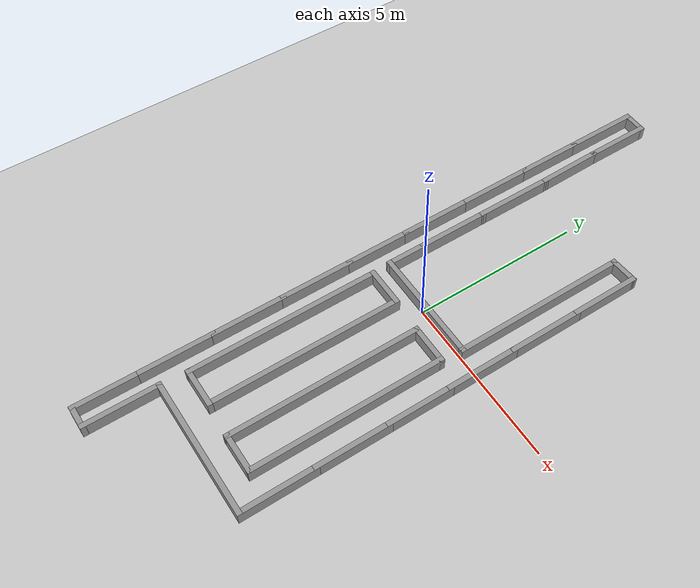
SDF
<sdf version="1.7">
 <world name="default">
  <light name="sun" type="directional">
   <pose>0 0 10 0 -0 0</pose>
   <diffuse>0.8 0.8 0.8 1</diffuse>
   <specular>0.2 0.2 0.2 1</specular>
   <attenuation>
    <range>1000</range>
    <constant>0.9</constant>
    <linear>0.01</linear>
    <quadratic>0.001</quadratic>
   </attenuation>
   <direction>-0.5 0.1 -0.9</direction>
   <spot><inner_angle>0</inner_angle><outer_angle>0</outer_angle><falloff>0</falloff></spot>
  </light>
  <model name="ground_plane">
   <static>1</static>
   <link name="link">
    <collision name="collision">
     <geometry><plane><normal>0 0 1</normal><size>100 100</size></plane></geometry>
     <surface>
      <contact><collide_bitmask>65535</collide_bitmask></contact>
      <friction><ode><mu>100</mu><mu2>50</mu2></ode></friction>
     </surface>
    </collision>
    <visual name="visual">
     <cast_shadows>0</cast_shadows>
     <geometry><plane><normal>0 0 1</normal><size>100 100</size></plane></geometry>
     <material>
      <script><uri>file://media/materials/scripts/gazebo.material</uri><name>Gazebo/Grey</name></script>
     </material>
    </visual>
   </link>
  </model>
  <gravity>0 0 -9.8</gravity>
  <magnetic_field>6e-06 2.3e-05 -4.2e-05</magnetic_field>
  <atmosphere type="adiabatic"/>
  <physics type="ode">
   <max_step_size>0.001</max_step_size>
   <real_time_factor>1</real_time_factor>
   <real_time_update_rate>1000</real_time_update_rate>
  </physics>
  <scene><ambient>0.4 0.4 0.4 1</ambient><background>0.7 0.7 0.7 1</background><shadows>1</shadows></scene>
  <spherical_coordinates>
   <surface_model>EARTH_WGS84</surface_model>
   <latitude_deg>0</latitude_deg>
   <longitude_deg>0</longitude_deg>
   <elevation>0</elevation>
   <heading_deg>0</heading_deg>
  </spherical_coordinates>
  <model name="circuitV1">
   <pose>0.098935 0.071 0 0 -0 0</pose>
   <link name="Wall_14">
    <collision name="Wall_14_Collision">
     <geometry><box><size>2.091 0.15 0.4</size></box></geometry>
     <pose>0 0 0.2 0 -0 0</pose>
    </collision>
    <visual name="Wall_14_Visual">
     <pose>0 0 0.2 0 -0 0</pose>
     <geometry><box><size>2.091 0.15 0.4</size></box></geometry>
     <material>
      <script><uri>file://media/materials/scripts/gazebo.material</uri><name>Gazebo/Grey</name></script>
      <ambient>1 1 1 1</ambient>
     </material>
     <meta><layer>0</layer></meta>
    </visual>
    <pose>2.34807 4.1545 0 0 -0 -1.5708</pose>
   </link>
   <link name="Wall_15">
    <collision name="Wall_15_Collision">
     <geometry><box><size>2.25 0.15 0.4</size></box></geometry>
     <pose>0 0 0.2 0 -0 0</pose>
    </collision>
    <visual name="Wall_15_Visual">
     <pose>0 0 0.2 0 -0 0</pose>
     <geometry><box><size>2.25 0.15 0.4</size></box></geometry>
     <material>
      <script><uri>file://media/materials/scripts/gazebo.material</uri><name>Gazebo/Grey</name></script>
      <ambient>1 1 1 1</ambient>
     </material>
     <meta><layer>0</layer></meta>
    </visual>
    <pose>2.34807 2.134 0 0 -0 -1.5708</pose>
   </link>
   <link name="Wall_16">
    <collision name="Wall_16_Collision">
     <geometry><box><size>2.15846 0.15 0.4</size></box></geometry>
     <pose>0 0 0.2 0 -0 0</pose>
    </collision>
    <visual name="Wall_16_Visual">
     <pose>0 0 0.2 0 -0 0</pose>
     <geometry><box><size>2.15846 0.15 0.4</size></box></geometry>
     <material>
      <script><uri>file://media/materials/scripts/gazebo.material</uri><name>Gazebo/Grey</name></script>
      <ambient>1 1 1 1</ambient>
     </material>
     <meta><layer>0</layer></meta>
    </visual>
    <pose>2.34807 0.0795 0 0 -0 -1.5708</pose>
   </link>
   <link name="Wall_17">
    <collision name="Wall_17_Collision">
     <geometry><box><size>2 0.15 0.4</size></box></geometry>
     <pose>0 0 0.2 0 -0 0</pose>
    </collision>
    <visual name="Wall_17_Visual">
     <pose>0 0 0.2 0 -0 0</pose>
     <geometry><box><size>2 0.15 0.4</size></box></geometry>
     <material>
      <script><uri>file://media/materials/scripts/gazebo.material</uri><name>Gazebo/Grey</name></script>
      <ambient>1 1 1 1</ambient>
     </material>
     <meta><layer>0</layer></meta>
    </visual>
    <pose>2.34807 -1.85 0 0 -0 -1.5708</pose>
   </link>
   <link name="Wall_18">
    <collision name="Wall_18_Collision">
     <geometry><box><size>2.25 0.15 0.4</size></box></geometry>
     <pose>0 0 0.2 0 -0 0</pose>
    </collision>
    <visual name="Wall_18_Visual">
     <pose>0 0 0.2 0 -0 0</pose>
     <geometry><box><size>2.25 0.15 0.4</size></box></geometry>
     <material>
      <script><uri>file://media/materials/scripts/gazebo.material</uri><name>Gazebo/Grey</name></script>
      <ambient>1 1 1 1</ambient>
     </material>
     <meta><layer>0</layer></meta>
    </visual>
    <pose>2.34807 -3.825 0 0 -0 -1.5708</pose>
   </link>
   <link name="Wall_19">
    <collision name="Wall_19_Collision">
     <geometry><box><size>2.25 0.15 0.4</size></box></geometry>
     <pose>0 0 0.2 0 -0 0</pose>
    </collision>
    <visual name="Wall_19_Visual">
     <pose>0 0 0.2 0 -0 0</pose>
     <geometry><box><size>2.25 0.15 0.4</size></box></geometry>
     <material>
      <script><uri>file://media/materials/scripts/gazebo.material</uri><name>Gazebo/Grey</name></script>
      <ambient>1 1 1 1</ambient>
     </material>
     <meta><layer>0</layer></meta>
    </visual>
    <pose>2.34807 -5.925 0 0 -0 -1.5708</pose>
   </link>
   <link name="Wall_20">
    <collision name="Wall_20_Collision">
     <geometry><box><size>4.25 0.15 0.4</size></box></geometry>
     <pose>0 0 0.2 0 -0 0</pose>
    </collision>
    <visual name="Wall_20_Visual">
     <pose>0 0 0.2 0 -0 0</pose>
     <geometry><box><size>4.25 0.15 0.4</size></box></geometry>
     <material>
      <script><uri>file://media/materials/scripts/gazebo.material</uri><name>Gazebo/Grey</name></script>
      <ambient>1 1 1 1</ambient>
     </material>
     <meta><layer>0</layer></meta>
    </visual>
    <pose>0.298065 -6.975 0 0 -0 3.14159</pose>
   </link>
   <link name="Wall_21">
    <collision name="Wall_21_Collision">
     <geometry><box><size>2.25 0.15 0.4</size></box></geometry>
     <pose>0 0 0.2 0 -0 0</pose>
    </collision>
    <visual name="Wall_21_Visual">
     <pose>0 0 0.2 0 -0 0</pose>
     <geometry><box><size>2.25 0.15 0.4</size></box></geometry>
     <material>
      <script><uri>file://media/materials/scripts/gazebo.material</uri><name>Gazebo/Grey</name></script>
      <ambient>1 1 1 1</ambient>
     </material>
     <meta><layer>0</layer></meta>
    </visual>
    <pose>-1.75194 -8.025 0 0 -0 -1.5708</pose>
   </link>
   <link name="Wall_22">
    <collision name="Wall_22_Collision">
     <geometry><box><size>0.75 0.15 0.4</size></box></geometry>
     <pose>0 0 0.2 0 -0 0</pose>
    </collision>
    <visual name="Wall_22_Visual">
     <pose>0 0 0.2 0 -0 0</pose>
     <geometry><box><size>0.75 0.15 0.4</size></box></geometry>
     <material>
      <script><uri>file://media/materials/scripts/gazebo.material</uri><name>Gazebo/Grey</name></script>
      <ambient>1 1 1 1</ambient>
     </material>
     <meta><layer>0</layer></meta>
    </visual>
    <pose>-2.05193 -9.075 0 0 -0 3.14159</pose>
   </link>
   <link name="Wall_24">
    <collision name="Wall_24_Collision">
     <geometry><box><size>2 0.15 0.4</size></box></geometry>
     <pose>0 0 0.2 0 -0 0</pose>
    </collision>
    <visual name="Wall_24_Visual">
     <pose>0 0 0.2 0 -0 0</pose>
     <geometry><box><size>2 0.15 0.4</size></box></geometry>
     <material>
      <script><uri>file://media/materials/scripts/gazebo.material</uri><name>Gazebo/Grey</name></script>
      <ambient>1 1 1 1</ambient>
     </material>
     <meta><layer>0</layer></meta>
    </visual>
    <pose>-2.35194 -8.15 0 0 -0 1.5708</pose>
   </link>
   <link name="Wall_25">
    <collision name="Wall_25_Collision">
     <geometry><box><size>2.25 0.15 0.4</size></box></geometry>
     <pose>0 0 0.2 0 -0 0</pose>
    </collision>
    <visual name="Wall_25_Visual">
     <pose>0 0 0.2 0 -0 0</pose>
     <geometry><box><size>2.25 0.15 0.4</size></box></geometry>
     <material>
      <script><uri>file://media/materials/scripts/gazebo.material</uri><name>Gazebo/Grey</name></script>
      <ambient>1 1 1 1</ambient>
     </material>
     <meta><layer>0</layer></meta>
    </visual>
    <pose>-2.35194 -6.175 0 0 -0 1.5708</pose>
   </link>
   <link name="Wall_29">
    <collision name="Wall_29_Collision">
     <geometry><box><size>2.25089 0.15 0.4</size></box></geometry>
     <pose>0 0 0.2 0 -0 0</pose>
    </collision>
    <visual name="Wall_29_Visual">
     <pose>0 0 0.2 0 -0 0</pose>
     <geometry><box><size>2.25089 0.15 0.4</size></box></geometry>
     <material>
      <script><uri>file://media/materials/scripts/gazebo.material</uri><name>Gazebo/Grey</name></script>
      <ambient>1 1 1 1</ambient>
     </material>
     <meta><layer>0</layer></meta>
    </visual>
    <pose>-2.35194 -4.075 0 0 -0 1.5708</pose>
   </link>
   <link name="Wall_30">
    <collision name="Wall_30_Collision">
     <geometry><box><size>2.25 0.15 0.4</size></box></geometry>
     <pose>0 0 0.2 0 -0 0</pose>
    </collision>
    <visual name="Wall_30_Visual">
     <pose>0 0 0.2 0 -0 0</pose>
     <geometry><box><size>2.25 0.15 0.4</size></box></geometry>
     <material>
      <script><uri>file://media/materials/scripts/gazebo.material</uri><name>Gazebo/Grey</name></script>
      <ambient>1 1 1 1</ambient>
     </material>
     <meta><layer>0</layer></meta>
    </visual>
    <pose>-2.35194 -1.975 0 0 -0 1.5708</pose>
   </link>
   <link name="Wall_31">
    <collision name="Wall_31_Collision">
     <geometry><box><size>2 0.15 0.4</size></box></geometry>
     <pose>0 0 0.2 0 -0 0</pose>
    </collision>
    <visual name="Wall_31_Visual">
     <pose>0 0 0.2 0 -0 0</pose>
     <geometry><box><size>2 0.15 0.4</size></box></geometry>
     <material>
      <script><uri>file://media/materials/scripts/gazebo.material</uri><name>Gazebo/Grey</name></script>
      <ambient>1 1 1 1</ambient>
     </material>
     <meta><layer>0</layer></meta>
    </visual>
    <pose>-2.35194 0 0 0 -0 1.5708</pose>
   </link>
   <link name="Wall_32">
    <collision name="Wall_32_Collision">
     <geometry><box><size>2.25 0.15 0.4</size></box></geometry>
     <pose>0 0 0.2 0 -0 0</pose>
    </collision>
    <visual name="Wall_32_Visual">
     <pose>0 0 0.2 0 -0 0</pose>
     <geometry><box><size>2.25 0.15 0.4</size></box></geometry>
     <material>
      <script><uri>file://media/materials/scripts/gazebo.material</uri><name>Gazebo/Grey</name></script>
      <ambient>1 1 1 1</ambient>
     </material>
     <meta><layer>0</layer></meta>
    </visual>
    <pose>-2.35194 1.975 0 0 -0 1.5708</pose>
   </link>
   <link name="Wall_33">
    <collision name="Wall_33_Collision">
     <geometry><box><size>2.25 0.15 0.4</size></box></geometry>
     <pose>0 0 0.2 0 -0 0</pose>
    </collision>
    <visual name="Wall_33_Visual">
     <pose>0 0 0.2 0 -0 0</pose>
     <geometry><box><size>2.25 0.15 0.4</size></box></geometry>
     <material>
      <script><uri>file://media/materials/scripts/gazebo.material</uri><name>Gazebo/Grey</name></script>
      <ambient>1 1 1 1</ambient>
     </material>
     <meta><layer>0</layer></meta>
    </visual>
    <pose>-2.35194 4.075 0 0 -0 1.5708</pose>
   </link>
   <link name="Wall_34">
    <collision name="Wall_34_Collision">
     <geometry><box><size>2 0.15 0.4</size></box></geometry>
     <pose>0 0 0.2 0 -0 0</pose>
    </collision>
    <visual name="Wall_34_Visual">
     <pose>0 0 0.2 0 -0 0</pose>
     <geometry><box><size>2 0.15 0.4</size></box></geometry>
     <material>
      <script><uri>file://media/materials/scripts/gazebo.material</uri><name>Gazebo/Grey</name></script>
      <ambient>1 1 1 1</ambient>
     </material>
     <meta><layer>0</layer></meta>
    </visual>
    <pose>-2.35194 6.05 0 0 -0 1.5708</pose>
   </link>
   <link name="Wall_35">
    <collision name="Wall_35_Collision">
     <geometry><box><size>2.25 0.15 0.4</size></box></geometry>
     <pose>0 0 0.2 0 -0 0</pose>
    </collision>
    <visual name="Wall_35_Visual">
     <pose>0 0 0.2 0 -0 0</pose>
     <geometry><box><size>2.25 0.15 0.4</size></box></geometry>
     <material>
      <script><uri>file://media/materials/scripts/gazebo.material</uri><name>Gazebo/Grey</name></script>
      <ambient>1 1 1 1</ambient>
     </material>
     <meta><layer>0</layer></meta>
    </visual>
    <pose>-2.35194 8.025 0 0 -0 1.5708</pose>
   </link>
   <link name="Wall_40">
    <collision name="Wall_40_Collision">
     <geometry><box><size>0.75 0.15 0.4</size></box></geometry>
     <pose>0 0 0.2 0 -0 0</pose>
    </collision>
    <visual name="Wall_40_Visual">
     <pose>0 0 0.2 0 -0 0</pose>
     <geometry><box><size>0.75 0.15 0.4</size></box></geometry>
     <material>
      <script><uri>file://media/materials/scripts/gazebo.material</uri><name>Gazebo/Grey</name></script>
      <ambient>1 1 1 1</ambient>
     </material>
     <meta><layer>0</layer></meta>
    </visual>
    <pose>-2.05193 9.075 0 0 -0 0</pose>
   </link>
   <link name="Wall_41">
    <collision name="Wall_41_Collision">
     <geometry><box><size>2 0.15 0.4</size></box></geometry>
     <pose>0 0 0.2 0 -0 0</pose>
    </collision>
    <visual name="Wall_41_Visual">
     <pose>0 0 0.2 0 -0 0</pose>
     <geometry><box><size>2 0.15 0.4</size></box></geometry>
     <material>
      <script><uri>file://media/materials/scripts/gazebo.material</uri><name>Gazebo/Grey</name></script>
      <ambient>1 1 1 1</ambient>
     </material>
     <meta><layer>0</layer></meta>
    </visual>
    <pose>-1.75194 8.15 0 0 -0 -1.5708</pose>
   </link>
   <link name="Wall_42">
    <collision name="Wall_42_Collision">
     <geometry><box><size>2.00101 0.15 0.4</size></box></geometry>
     <pose>0 0 0.2 0 -0 0</pose>
    </collision>
    <visual name="Wall_42_Visual">
     <pose>0 0 0.2 0 -0 0</pose>
     <geometry><box><size>2.00101 0.15 0.4</size></box></geometry>
     <material>
      <script><uri>file://media/materials/scripts/gazebo.material</uri><name>Gazebo/Grey</name></script>
      <ambient>1 1 1 1</ambient>
     </material>
     <meta><layer>0</layer></meta>
    </visual>
    <pose>-1.73643 6.3 0 0 -0 -1.55404</pose>
   </link>
   <link name="Wall_43">
    <collision name="Wall_43_Collision">
     <geometry><box><size>2.40295 0.15 0.4</size></box></geometry>
     <pose>0 0 0.2 0 -0 0</pose>
    </collision>
    <visual name="Wall_43_Visual">
     <pose>0 0 0.2 0 -0 0</pose>
     <geometry><box><size>2.40295 0.15 0.4</size></box></geometry>
     <material>
      <script><uri>file://media/materials/scripts/gazebo.material</uri><name>Gazebo/Grey</name></script>
      <ambient>1 1 1 1</ambient>
     </material>
     <meta><layer>0</layer></meta>
    </visual>
    <pose>-1.72094 4.249 0 0 -0 -1.5708</pose>
   </link>
   <link name="Wall_44">
    <collision name="Wall_44_Collision">
     <geometry><box><size>2.18905 0.15 0.4</size></box></geometry>
     <pose>0 0 0.2 0 -0 0</pose>
    </collision>
    <visual name="Wall_44_Visual">
     <pose>0 0 0.2 0 -0 0</pose>
     <geometry><box><size>2.18905 0.15 0.4</size></box></geometry>
     <material>
      <script><uri>file://media/materials/scripts/gazebo.material</uri><name>Gazebo/Grey</name></script>
      <ambient>1 1 1 1</ambient>
     </material>
     <meta><layer>0</layer></meta>
    </visual>
    <pose>-1.72144 2.1035 0 0 -0 -1.57129</pose>
   </link>
   <link name="Wall_49">
    <collision name="Wall_49_Collision">
     <geometry><box><size>1.25 0.15 0.4</size></box></geometry>
     <pose>0 0 0.2 0 -0 0</pose>
    </collision>
    <visual name="Wall_49_Visual">
     <pose>0 0 0.2 0 -0 0</pose>
     <geometry><box><size>1.25 0.15 0.4</size></box></geometry>
     <material>
      <script><uri>file://media/materials/scripts/gazebo.material</uri><name>Gazebo/Grey</name></script>
      <ambient>1 1 1 1</ambient>
     </material>
     <meta><layer>0</layer></meta>
    </visual>
    <pose>-1.72193 0.534 0 0 -0 -1.5708</pose>
   </link>
   <link name="Wall_50">
    <collision name="Wall_50_Collision">
     <geometry><box><size>3.5 0.15 0.4</size></box></geometry>
     <pose>0 0 0.2 0 -0 0</pose>
    </collision>
    <visual name="Wall_50_Visual">
     <pose>0 0 0.2 0 -0 0</pose>
     <geometry><box><size>3.5 0.15 0.4</size></box></geometry>
     <material>
      <script><uri>file://media/materials/scripts/gazebo.material</uri><name>Gazebo/Grey</name></script>
      <ambient>1 1 1 1</ambient>
     </material>
     <meta><layer>0</layer></meta>
    </visual>
    <pose>-0.046935 -0.016 0 0 -0 0</pose>
   </link>
   <link name="Wall_51">
    <collision name="Wall_51_Collision">
     <geometry><box><size>5.25 0.15 0.4</size></box></geometry>
     <pose>0 0 0.2 0 -0 0</pose>
    </collision>
    <visual name="Wall_51_Visual">
     <pose>0 0 0.2 0 -0 0</pose>
     <geometry><box><size>5.25 0.15 0.4</size></box></geometry>
     <material>
      <script><uri>file://media/materials/scripts/gazebo.material</uri><name>Gazebo/Grey</name></script>
      <ambient>1 1 1 1</ambient>
     </material>
     <meta><layer>0</layer></meta>
    </visual>
    <pose>1.62807 2.534 0 0 -0 1.5708</pose>
   </link>
   <link name="Wall_52">
    <collision name="Wall_52_Collision">
     <geometry><box><size>0.870621 0.15 0.4</size></box></geometry>
     <pose>0 0 0.2 0 -0 0</pose>
    </collision>
    <visual name="Wall_52_Visual">
     <pose>0 0 0.2 0 -0 0</pose>
     <geometry><box><size>0.870621 0.15 0.4</size></box></geometry>
     <material>
      <script><uri>file://media/materials/scripts/gazebo.material</uri><name>Gazebo/Grey</name></script>
      <ambient>1 1 1 1</ambient>
     </material>
     <meta><layer>0</layer></meta>
    </visual>
    <pose>1.98806 5.1045 0 0 -0 0.056883</pose>
   </link>
   <link name="Wall_54">
    <collision name="Wall_54_Collision">
     <geometry><box><size>1.25 0.15 0.4</size></box></geometry>
     <pose>0 0 0.2 0 -0 0</pose>
    </collision>
    <visual name="Wall_54_Visual">
     <pose>0 0 0.2 0 -0 0</pose>
     <geometry><box><size>1.25 0.15 0.4</size></box></geometry>
     <material>
      <script><uri>file://media/materials/scripts/gazebo.material</uri><name>Gazebo/Grey</name></script>
      <ambient>1 1 1 1</ambient>
     </material>
     <meta><layer>0</layer></meta>
    </visual>
    <pose>-1.14193 -0.586 0 0 -0 0</pose>
   </link>
   <link name="Wall_55">
    <collision name="Wall_55_Collision">
     <geometry><box><size>5.75 0.15 0.4</size></box></geometry>
     <pose>0 0 0.2 0 -0 0</pose>
    </collision>
    <visual name="Wall_55_Visual">
     <pose>0 0 0.2 0 -0 0</pose>
     <geometry><box><size>5.75 0.15 0.4</size></box></geometry>
     <material>
      <script><uri>file://media/materials/scripts/gazebo.material</uri><name>Gazebo/Grey</name></script>
      <ambient>1 1 1 1</ambient>
     </material>
     <meta><layer>0</layer></meta>
    </visual>
    <pose>-0.591935 -3.386 0 0 -0 -1.5708</pose>
   </link>
   <link name="Wall_56">
    <collision name="Wall_56_Collision">
     <geometry><box><size>1.25 0.15 0.4</size></box></geometry>
     <pose>0 0 0.2 0 -0 0</pose>
    </collision>
    <visual name="Wall_56_Visual">
     <pose>0 0 0.2 0 -0 0</pose>
     <geometry><box><size>1.25 0.15 0.4</size></box></geometry>
     <material>
      <script><uri>file://media/materials/scripts/gazebo.material</uri><name>Gazebo/Grey</name></script>
      <ambient>1 1 1 1</ambient>
     </material>
     <meta><layer>0</layer></meta>
    </visual>
    <pose>-1.14193 -6.186 0 0 -0 3.14159</pose>
   </link>
   <link name="Wall_57">
    <collision name="Wall_57_Collision">
     <geometry><box><size>5.75 0.15 0.4</size></box></geometry>
     <pose>0 0 0.2 0 -0 0</pose>
    </collision>
    <visual name="Wall_57_Visual">
     <pose>0 0 0.2 0 -0 0</pose>
     <geometry><box><size>5.75 0.15 0.4</size></box></geometry>
     <material>
      <script><uri>file://media/materials/scripts/gazebo.material</uri><name>Gazebo/Grey</name></script>
      <ambient>1 1 1 1</ambient>
     </material>
     <meta><layer>0</layer></meta>
    </visual>
    <pose>-1.69193 -3.386 0 0 -0 1.5708</pose>
   </link>
   <link name="Wall_59">
    <collision name="Wall_59_Collision">
     <geometry><box><size>5.75 0.15 0.4</size></box></geometry>
     <pose>0 0 0.2 0 -0 0</pose>
    </collision>
    <visual name="Wall_59_Visual">
     <pose>0 0 0.2 0 -0 0</pose>
     <geometry><box><size>5.75 0.15 0.4</size></box></geometry>
     <material>
      <script><uri>file://media/materials/scripts/gazebo.material</uri><name>Gazebo/Grey</name></script>
      <ambient>1 1 1 1</ambient>
     </material>
     <meta><layer>0</layer></meta>
    </visual>
    <pose>0.450065 -3.447 0 0 -0 -1.5708</pose>
   </link>
   <link name="Wall_60">
    <collision name="Wall_60_Collision">
     <geometry><box><size>1.25 0.15 0.4</size></box></geometry>
     <pose>0 0 0.2 0 -0 0</pose>
    </collision>
    <visual name="Wall_60_Visual">
     <pose>0 0 0.2 0 -0 0</pose>
     <geometry><box><size>1.25 0.15 0.4</size></box></geometry>
     <material>
      <script><uri>file://media/materials/scripts/gazebo.material</uri><name>Gazebo/Grey</name></script>
      <ambient>1 1 1 1</ambient>
     </material>
     <meta><layer>0</layer></meta>
    </visual>
    <pose>1.00006 -6.247 0 0 -0 0</pose>
   </link>
   <link name="Wall_61">
    <collision name="Wall_61_Collision">
     <geometry><box><size>5.75 0.15 0.4</size></box></geometry>
     <pose>0 0 0.2 0 -0 0</pose>
    </collision>
    <visual name="Wall_61_Visual">
     <pose>0 0 0.2 0 -0 0</pose>
     <geometry><box><size>5.75 0.15 0.4</size></box></geometry>
     <material>
      <script><uri>file://media/materials/scripts/gazebo.material</uri><name>Gazebo/Grey</name></script>
      <ambient>1 1 1 1</ambient>
     </material>
     <meta><layer>0</layer></meta>
    </visual>
    <pose>1.55007 -3.447 0 0 -0 1.5708</pose>
   </link>
   <link name="Wall_62">
    <collision name="Wall_62_Collision">
     <geometry><box><size>1.25 0.15 0.4</size></box></geometry>
     <pose>0 0 0.2 0 -0 0</pose>
    </collision>
    <visual name="Wall_62_Visual">
     <pose>0 0 0.2 0 -0 0</pose>
     <geometry><box><size>1.25 0.15 0.4</size></box></geometry>
     <material>
      <script><uri>file://media/materials/scripts/gazebo.material</uri><name>Gazebo/Grey</name></script>
      <ambient>1 1 1 1</ambient>
     </material>
     <meta><layer>0</layer></meta>
    </visual>
    <pose>1.00006 -0.647 0 0 -0 3.14159</pose>
   </link>
   <static>1</static>
  </model>
 </world>
</sdf>
